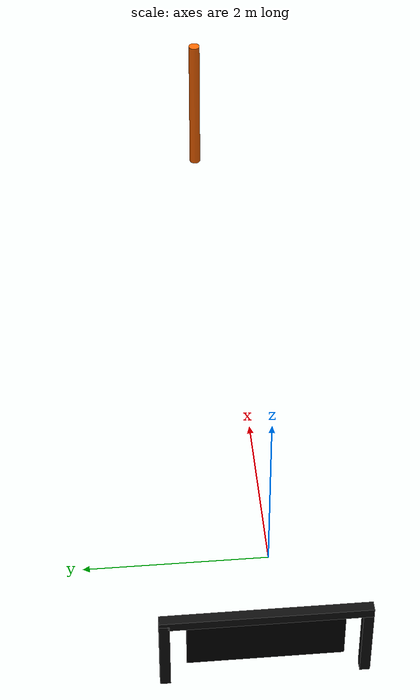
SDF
<?xml version="1.0"?>
<sdf version="1.9">
  <model name="marv_prequal_course">
    <static>true</static>
    <include>
      <name>gate</name>
      <uri>model://marv_gate</uri>
      <pose>0 0 0 0 0 0</pose>
    </include>
    <include>
      <name>marker</name>
      <uri>model://marv_yellow_pole</uri>
      <pose>10 0 0 0 0 0</pose>
    </include>
  </model>
</sdf>

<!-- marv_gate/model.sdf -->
<!-- Gate opening 2 m wide; frame at 1 m depth (center z=-1 in ENU, surface z=0). -->
<sdf version="1.9">
  <model name="marv_gate">
    <static>true</static>
    <link name="link">
      <pose>0 0 -1 0 0 0</pose>
      <!-- Left post -->
      <visual name="post_l">
        <pose>0 -1.15 -0.5 0 0 0</pose>
        <geometry><box><size>0.12 0.12 1.0</size></box></geometry>
        <material><ambient>0.02 0.02 0.02 1</ambient><diffuse>0.05 0.05 0.05 1</diffuse></material>
      </visual>
      <collision name="post_l"><pose>0 -1.15 -0.5 0 0 0</pose><geometry><box><size>0.12 0.12 1.0</size></box></geometry></collision>
      <!-- Right post -->
      <visual name="post_r">
        <pose>0 1.15 -0.5 0 0 0</pose>
        <geometry><box><size>0.12 0.12 1.0</size></box></geometry>
        <material><ambient>0.02 0.02 0.02 1</ambient><diffuse>0.05 0.05 0.05 1</diffuse></material>
      </visual>
      <collision name="post_r"><pose>0 1.15 -0.5 0 0 0</pose><geometry><box><size>0.12 0.12 1.0</size></box></geometry></collision>
      <!-- Top bar -->
      <visual name="top_bar">
        <pose>0 0 0.0 0 0 0</pose>
        <geometry><box><size>0.12 2.42 0.12</size></box></geometry>
        <material><ambient>0.02 0.02 0.02 1</ambient><diffuse>0.05 0.05 0.05 1</diffuse></material>
      </visual>
      <collision name="top_bar"><pose>0 0 0.0 0 0 0</pose><geometry><box><size>0.12 2.42 0.12</size></box></geometry></collision>
      <!-- All-black panel for OpenCV black_gate detection -->
      <visual name="panel">
        <pose>0 0 -0.35 0 0 0</pose>
        <geometry><box><size>0.04 1.8 0.7</size></box></geometry>
        <material><ambient>0 0 0 1</ambient><diffuse>0 0 0 1</diffuse></material>
      </visual>
    </link>
  </model>
</sdf>

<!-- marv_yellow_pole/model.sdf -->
<sdf version="1.9">
  <model name="marv_yellow_pole">
    <static>true</static>
    <link name="link">
      <visual name="pole">
        <pose>0 0 -1.05 0 0 0</pose>
        <geometry>
          <cylinder>
            <radius>0.08</radius>
            <length>2.1</length>
          </cylinder>
        </geometry>
        <material>
          <!-- Rustoleum Neon Orange (fluorescent) -->
          <ambient>0.95 0.32 0.0 1</ambient>
          <diffuse>1.0 0.40 0.0 1</diffuse>
          <specular>0.2 0.2 0.2 1</specular>
          <emissive>0.35 0.10 0.0 1</emissive>
        </material>
      </visual>
      <collision name="pole_collision">
        <pose>0 0 -1.05 0 0 0</pose>
        <geometry>
          <cylinder>
            <radius>0.08</radius>
            <length>2.1</length>
          </cylinder>
        </geometry>
      </collision>
    </link>
  </model>
</sdf>
